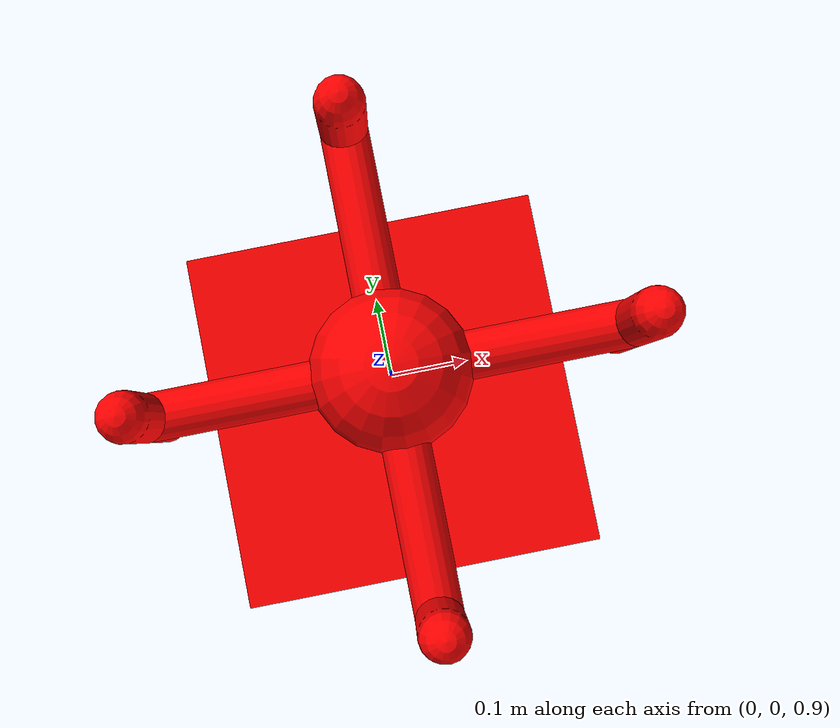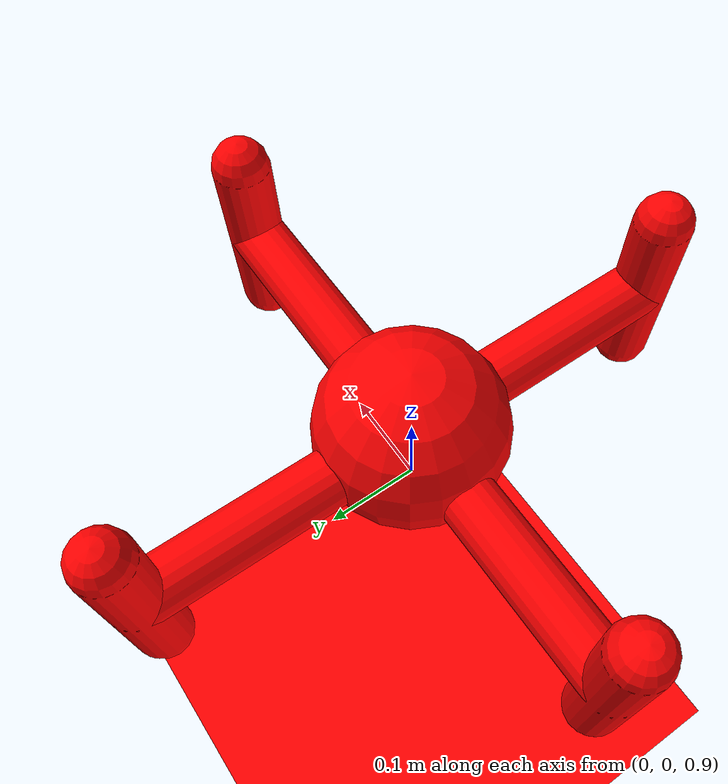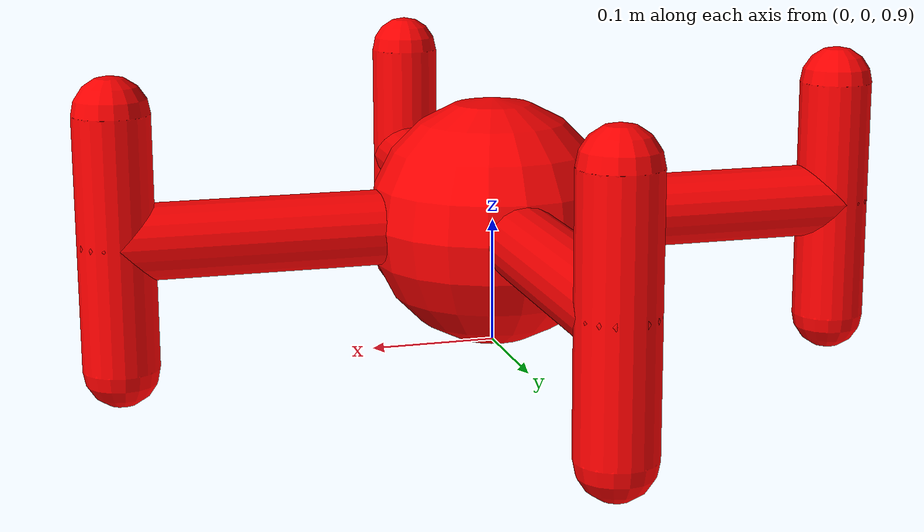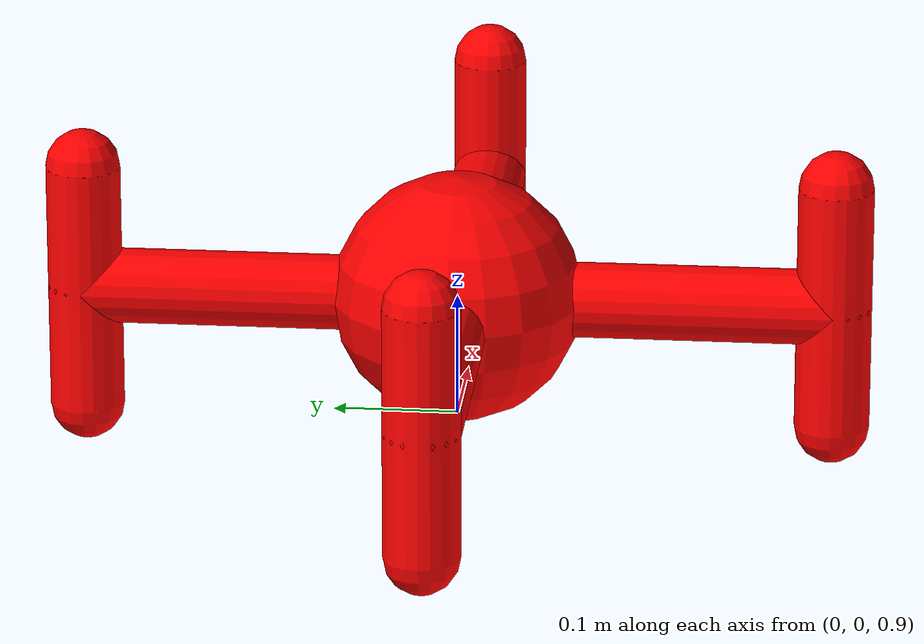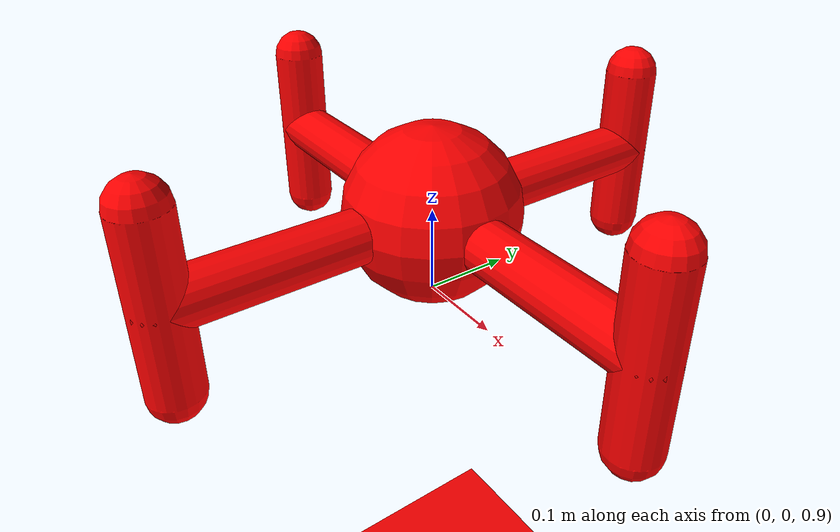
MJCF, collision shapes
<mujoco>
    <compiler meshdir="assets" texturedir="assets" autolimits="true"/>
    <size njmax="3000" nconmax="1000"/>
    <option timestep="0.008"/>
    <default>
        <geom condim="6" density="1" rgba="1 0 0 0" />
        <joint damping=".001"/>
        <motor ctrlrange="-1 1" ctrllimited="true" forcerange="-.05 .05" forcelimited="true"/>
        <velocity ctrlrange="-1 1" ctrllimited="true" forcerange="-.05 .05" forcelimited="true"/>
        <site size="0.02" type="sphere"/>
    </default>
    <asset>
        <texture type="2d" file="X2_lowpoly_texture_SpinningProps_1024.png"/>
        <material name="phong3SG" texture="X2_lowpoly_texture_SpinningProps_1024"/>
        <material name="invisible" rgba="0 0 0 0"/>
        <mesh file="X2_lowpoly.obj" scale="0.01 0.01 0.01"/>
    </asset>
    <worldbody>
        <geom name="floor" size="5 5 0.1" type="plane" condim="6"/>
        <body name="robot" pos="0 0 1.0">
            <geom material="phong3SG" mesh="X2_lowpoly" type="mesh" contype="0" conaffinity="0" group="2" quat="-0.271 -0.271 -0.653 -0.653" rgba="0.5 0.5 0.5 1" />
            <camera name="vision" pos="0 0 .15" xyaxes="0 -1 0 .4 0 1" fovy="90"/>
            <joint armature="0" axis="1 0 0" damping="0.5" limited="false" name="slidex" pos="0 0 0" stiffness="0" type="slide"/>
            <joint armature="0" axis="0 1 0" damping="0.5" limited="false" name="slidey" pos="0 0 0" stiffness="0" type="slide"/>
            <joint armature="0" axis="0 0 1" damping="0.2" limited="false" name="slidez" pos="0 0 0" stiffness="0" type="slide"/>
            <joint armature="0" axis="1 0 0" damping="0.2" limited="false" name="hingex" pos="0 0 0" stiffness="0" type="hinge"/>
            <joint armature="0" axis="0 1 0" damping="0.2" limited="false" name="hingey" pos="0 0 0" stiffness="0" type="hinge"/>
            <joint armature="0" axis="0 0 1" damping="0.2" limited="false" name="hingez" pos="0 0 0" stiffness="0" type="hinge"/>
            <geom name="robot" pos="0 0 0" size="0.1" type="sphere"/>
            <geom fromto="0.3 0.0 0.0 -0.3 0.0 0.0" name="body1" size="0.03" type="capsule"/>
            <geom fromto="0.0 0.3 0.0 0.0 -0.3 0.0" name="body2" size="0.03" type="capsule"/>
            <site name="robot" rgba="0 1 0 .1"/>
            <body name="p1" pos="0.3 0.0 0.0">
                <geom fromto="0.0 0.0 -0.1 0.0 0.0 0.1" name="p1_body" size="0.03" type="capsule"/>
                <site name="p1" rgba="1 0 1 0"/>
                <site name="p1a" pos="0.0 0.0 0.1" rgba="1 0 1 0"/>
                <site name="p1b" pos="0.0 0.0 -0.1" rgba="1 1 0 0"/>
            </body>
            <body name="p2" pos="0.0 0.3  0.0">
                <geom fromto="0.0 0.0 -0.1 0.0 0.0 0.1" name="p2_body" size="0.03" type="capsule"/>
                <site name="p2" rgba="0 1 0 0"/>
                <site name="p2a" pos="0.0 0.0 0.1" rgba="1 0 1 0"/>
                <site name="p2b" pos="0.0 0.0 -0.1" rgba="1 1 0 0"/>
            </body>
            <body name="p3" pos="-0.3 0.0 0.0">
                <geom fromto="0.0 0.0 -0.1 0.0 0.0 0.1" name="p3_body" size="0.03" type="capsule"/>
                <site name="p3" rgba="0 0 1 0"/>
                <site name="p3a" pos="0.0 0.0 0.1" rgba="1 0 1 0"/>
                <site name="p3b" pos="0.0 0.0 -0.1" rgba="1 1 0 0"/>
            </body>
            <body name="p4" pos="0.0 -0.3 0.0">
                <geom fromto="0.0 0.0 -0.1 0.0 0.0 0.1" name="p4_body" size="0.03" type="capsule"/>
                <site name="p4" rgba="0 1 1 0"/>
                <site name="p4a" pos="0.0 0.0 0.1" rgba="1 0 1 0"/>
                <site name="p4b" pos="0.0 0.0 -0.1" rgba="1 1 0 0"/>
            </body>
        </body>
    </worldbody>
    <sensor>
        <touch site="p1a" name="touch_p1a"/>
        <touch site="p1b" name="touch_p1b"/>
        <touch site="p2a" name="touch_p2a"/>
        <touch site="p2b" name="touch_p2b"/>
        <touch site="p3a" name="touch_p3a"/>
        <touch site="p3b" name="touch_p3b"/>
        <touch site="p4a" name="touch_p4a"/>
        <touch site="p4b" name="touch_p4b"/>

        <!-- Used for observation -->
        <accelerometer site="robot" name="accelerometer"/>
        <velocimeter site="robot" name="velocimeter"/>
        <gyro site="robot" name="gyro"/>
        <magnetometer site="robot" name="magnetometer"/>

        <!-- Used for intrinsic constraints -->
        <subtreecom body="robot" name="subtreecom"/>
        <subtreelinvel body="robot" name="subtreelinvel"/>
        <subtreeangmom body="robot" name="subtreeangmom"/>
    </sensor>
</mujoco>
